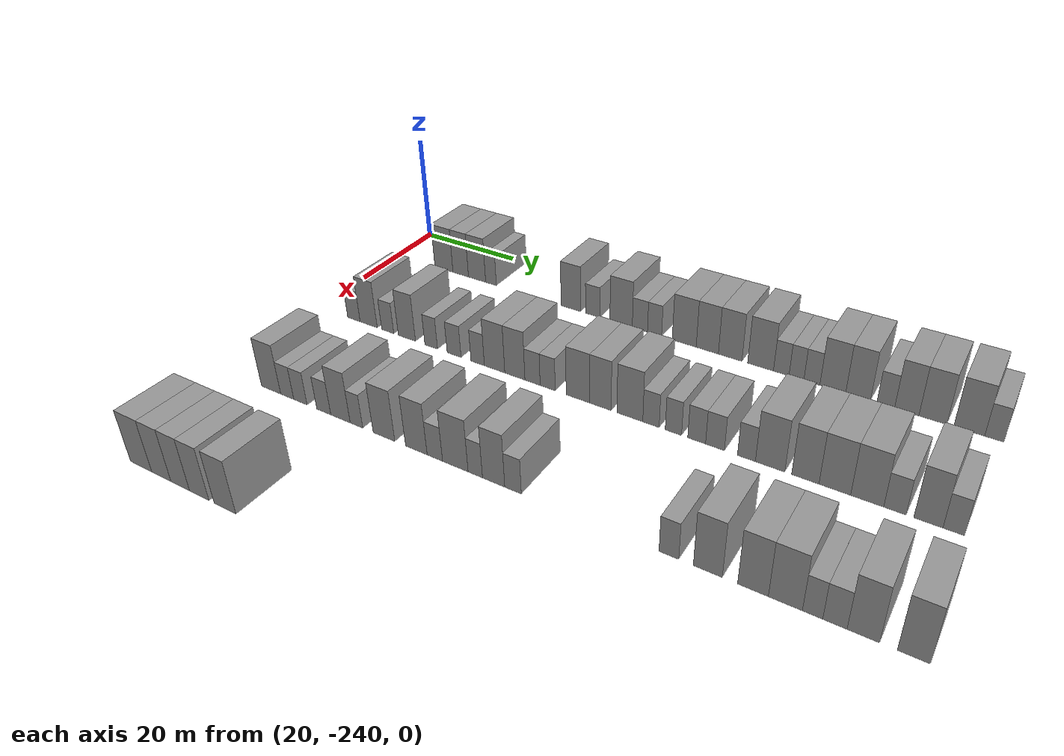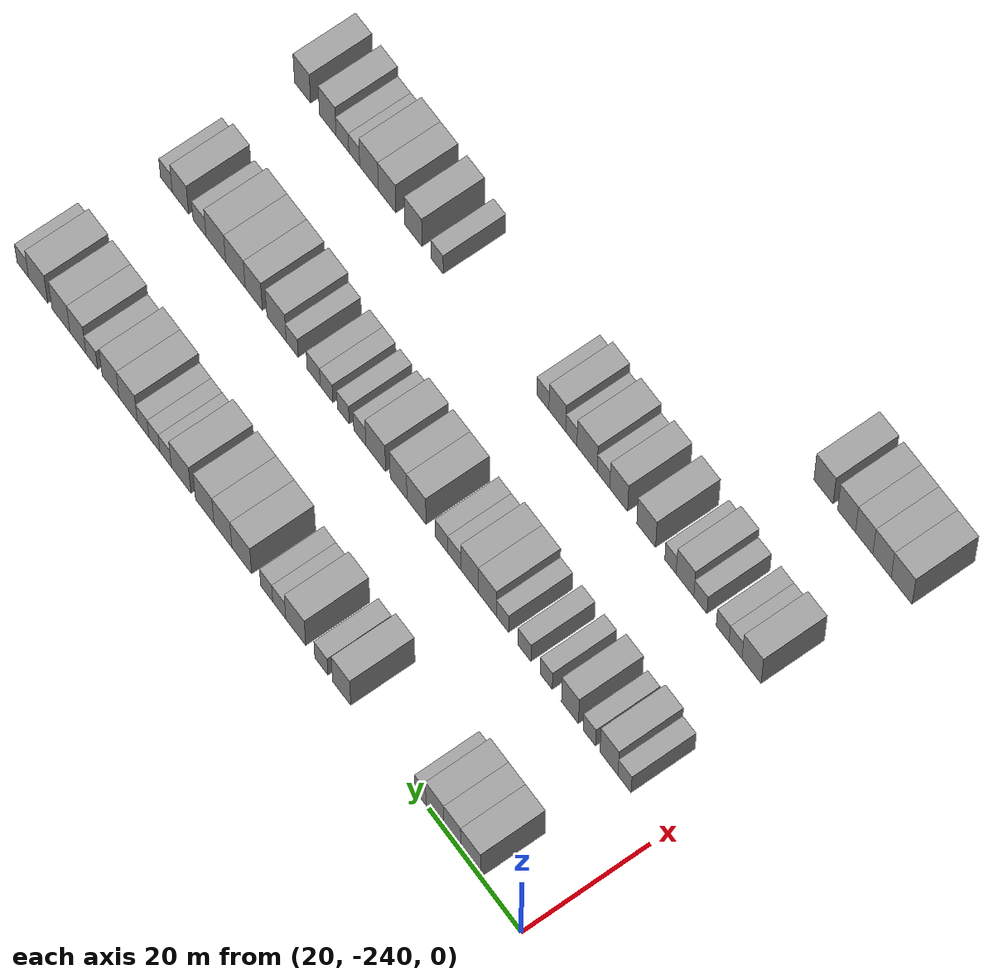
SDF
<sdf version="1.6">
 <world name="default">
  <model name="building_40">
   <static>1</static>
   <pose>25.0000 -228.9742 0 0.000000 0.000000 0.000000</pose>
   <link name="link">
    <pose>0 0 4.50 0 0 0</pose>
    <collision name="collision"><geometry><box><size>10.0000 4.2672 9.0000</size></box></geometry></collision>
    <visual name="visual">
     <cast_shadows>0</cast_shadows>
     <geometry><box><size>10.0000 4.2672 9.0000</size></box></geometry>
     <material>
      <script>
       <uri>model://grey_wall/materials/scripts</uri>
       <uri>model://grey_wall/materials/textures</uri>
       <name>vrc/grey_wall</name>
      </script>
     </material>
    </visual>
   </link>
  </model>
  <model name="building_41">
   <static>1</static>
   <pose>25.0000 -225.0343 0 0.000000 0.000000 0.000000</pose>
   <link name="link">
    <pose>0 0 4.50 0 0 0</pose>
    <collision name="collision"><geometry><box><size>10.0000 3.6128 9.0000</size></box></geometry></collision>
    <visual name="visual">
     <cast_shadows>0</cast_shadows>
     <geometry><box><size>10.0000 3.6128 9.0000</size></box></geometry>
     <material>
      <script>
       <uri>model://grey_wall/materials/scripts</uri>
       <uri>model://grey_wall/materials/textures</uri>
       <name>vrc/grey_wall</name>
      </script>
     </material>
    </visual>
   </link>
  </model>
  <model name="building_42">
   <static>1</static>
   <pose>25.0000 -221.2701 0 0.000000 0.000000 0.000000</pose>
   <link name="link">
    <pose>0 0 4.50 0 0 0</pose>
    <collision name="collision"><geometry><box><size>10.0000 3.9156 9.0000</size></box></geometry></collision>
    <visual name="visual">
     <cast_shadows>0</cast_shadows>
     <geometry><box><size>10.0000 3.9156 9.0000</size></box></geometry>
     <material>
      <script>
       <uri>model://grey_wall/materials/scripts</uri>
       <uri>model://grey_wall/materials/textures</uri>
       <name>vrc/grey_wall</name>
      </script>
     </material>
    </visual>
   </link>
  </model>
  <model name="building_43">
   <static>1</static>
   <pose>25.0000 -218.1112 0 0.000000 0.000000 0.000000</pose>
   <link name="link">
    <pose>0 0 3.00 0 0 0</pose>
    <collision name="collision"><geometry><box><size>10.0000 2.4021 6.0000</size></box></geometry></collision>
    <visual name="visual">
     <cast_shadows>0</cast_shadows>
     <geometry><box><size>10.0000 2.4021 6.0000</size></box></geometry>
     <material>
      <script>
       <uri>model://grey_wall/materials/scripts</uri>
       <uri>model://grey_wall/materials/textures</uri>
       <name>vrc/grey_wall</name>
      </script>
     </material>
    </visual>
   </link>
  </model>
  <model name="building_44">
   <static>1</static>
   <pose>25.0000 -200.8875 0 0.000000 0.000000 0.000000</pose>
   <link name="link">
    <pose>0 0 4.50 0 0 0</pose>
    <collision name="collision"><geometry><box><size>10.0000 4.0151 9.0000</size></box></geometry></collision>
    <visual name="visual">
     <cast_shadows>0</cast_shadows>
     <geometry><box><size>10.0000 4.0151 9.0000</size></box></geometry>
     <material>
      <script>
       <uri>model://grey_wall/materials/scripts</uri>
       <uri>model://grey_wall/materials/textures</uri>
       <name>vrc/grey_wall</name>
      </script>
     </material>
    </visual>
   </link>
  </model>
  <model name="building_45">
   <static>1</static>
   <pose>25.0000 -196.4308 0 0.000000 0.000000 0.000000</pose>
   <link name="link">
    <pose>0 0 3.00 0 0 0</pose>
    <collision name="collision"><geometry><box><size>10.0000 2.8984 6.0000</size></box></geometry></collision>
    <visual name="visual">
     <cast_shadows>0</cast_shadows>
     <geometry><box><size>10.0000 2.8984 6.0000</size></box></geometry>
     <material>
      <script>
       <uri>model://grey_wall/materials/scripts</uri>
       <uri>model://grey_wall/materials/textures</uri>
       <name>vrc/grey_wall</name>
      </script>
     </material>
    </visual>
   </link>
  </model>
  <model name="building_46">
   <static>1</static>
   <pose>25.0000 -190.7838 0 0.000000 0.000000 0.000000</pose>
   <link name="link">
    <pose>0 0 4.50 0 0 0</pose>
    <collision name="collision"><geometry><box><size>10.0000 4.3955 9.0000</size></box></geometry></collision>
    <visual name="visual">
     <cast_shadows>0</cast_shadows>
     <geometry><box><size>10.0000 4.3955 9.0000</size></box></geometry>
     <material>
      <script>
       <uri>model://grey_wall/materials/scripts</uri>
       <uri>model://grey_wall/materials/textures</uri>
       <name>vrc/grey_wall</name>
      </script>
     </material>
    </visual>
   </link>
  </model>
  <model name="building_47">
   <static>1</static>
   <pose>25.0000 -187.1264 0 0.000000 0.000000 0.000000</pose>
   <link name="link">
    <pose>0 0 3.00 0 0 0</pose>
    <collision name="collision"><geometry><box><size>10.0000 2.9193 6.0000</size></box></geometry></collision>
    <visual name="visual">
     <cast_shadows>0</cast_shadows>
     <geometry><box><size>10.0000 2.9193 6.0000</size></box></geometry>
     <material>
      <script>
       <uri>model://grey_wall/materials/scripts</uri>
       <uri>model://grey_wall/materials/textures</uri>
       <name>vrc/grey_wall</name>
      </script>
     </material>
    </visual>
   </link>
  </model>
  <model name="building_48">
   <static>1</static>
   <pose>25.0000 -184.3268 0 0.000000 0.000000 0.000000</pose>
   <link name="link">
    <pose>0 0 3.00 0 0 0</pose>
    <collision name="collision"><geometry><box><size>10.0000 2.6798 6.0000</size></box></geometry></collision>
    <visual name="visual">
     <cast_shadows>0</cast_shadows>
     <geometry><box><size>10.0000 2.6798 6.0000</size></box></geometry>
     <material>
      <script>
       <uri>model://grey_wall/materials/scripts</uri>
       <uri>model://grey_wall/materials/textures</uri>
       <name>vrc/grey_wall</name>
      </script>
     </material>
    </visual>
   </link>
  </model>
  <model name="building_49">
   <static>1</static>
   <pose>25.0000 -178.7827 0 0.000000 0.000000 0.000000</pose>
   <link name="link">
    <pose>0 0 4.50 0 0 0</pose>
    <collision name="collision"><geometry><box><size>10.0000 4.4084 9.0000</size></box></geometry></collision>
    <visual name="visual">
     <cast_shadows>0</cast_shadows>
     <geometry><box><size>10.0000 4.4084 9.0000</size></box></geometry>
     <material>
      <script>
       <uri>model://grey_wall/materials/scripts</uri>
       <uri>model://grey_wall/materials/textures</uri>
       <name>vrc/grey_wall</name>
      </script>
     </material>
    </visual>
   </link>
  </model>
  <model name="building_50">
   <static>1</static>
   <pose>25.0000 -174.5790 0 0.000000 0.000000 0.000000</pose>
   <link name="link">
    <pose>0 0 4.50 0 0 0</pose>
    <collision name="collision"><geometry><box><size>10.0000 3.9990 9.0000</size></box></geometry></collision>
    <visual name="visual">
     <cast_shadows>0</cast_shadows>
     <geometry><box><size>10.0000 3.9990 9.0000</size></box></geometry>
     <material>
      <script>
       <uri>model://grey_wall/materials/scripts</uri>
       <uri>model://grey_wall/materials/textures</uri>
       <name>vrc/grey_wall</name>
      </script>
     </material>
    </visual>
   </link>
  </model>
  <model name="building_51">
   <static>1</static>
   <pose>25.0000 -170.5038 0 0.000000 0.000000 0.000000</pose>
   <link name="link">
    <pose>0 0 4.50 0 0 0</pose>
    <collision name="collision"><geometry><box><size>10.0000 4.1513 9.0000</size></box></geometry></collision>
    <visual name="visual">
     <cast_shadows>0</cast_shadows>
     <geometry><box><size>10.0000 4.1513 9.0000</size></box></geometry>
     <material>
      <script>
       <uri>model://grey_wall/materials/scripts</uri>
       <uri>model://grey_wall/materials/textures</uri>
       <name>vrc/grey_wall</name>
      </script>
     </material>
    </visual>
   </link>
  </model>
  <model name="building_52">
   <static>1</static>
   <pose>25.0000 -165.2198 0 0.000000 0.000000 0.000000</pose>
   <link name="link">
    <pose>0 0 4.50 0 0 0</pose>
    <collision name="collision"><geometry><box><size>10.0000 4.4166 9.0000</size></box></geometry></collision>
    <visual name="visual">
     <cast_shadows>0</cast_shadows>
     <geometry><box><size>10.0000 4.4166 9.0000</size></box></geometry>
     <material>
      <script>
       <uri>model://grey_wall/materials/scripts</uri>
       <uri>model://grey_wall/materials/textures</uri>
       <name>vrc/grey_wall</name>
      </script>
     </material>
    </visual>
   </link>
  </model>
  <model name="building_53">
   <static>1</static>
   <pose>25.0000 -161.7086 0 0.000000 0.000000 0.000000</pose>
   <link name="link">
    <pose>0 0 3.00 0 0 0</pose>
    <collision name="collision"><geometry><box><size>10.0000 2.6059 6.0000</size></box></geometry></collision>
    <visual name="visual">
     <cast_shadows>0</cast_shadows>
     <geometry><box><size>10.0000 2.6059 6.0000</size></box></geometry>
     <material>
      <script>
       <uri>model://grey_wall/materials/scripts</uri>
       <uri>model://grey_wall/materials/textures</uri>
       <name>vrc/grey_wall</name>
      </script>
     </material>
    </visual>
   </link>
  </model>
  <model name="building_54">
   <static>1</static>
   <pose>25.0000 -159.1766 0 0.000000 0.000000 0.000000</pose>
   <link name="link">
    <pose>0 0 3.00 0 0 0</pose>
    <collision name="collision"><geometry><box><size>10.0000 2.4581 6.0000</size></box></geometry></collision>
    <visual name="visual">
     <cast_shadows>0</cast_shadows>
     <geometry><box><size>10.0000 2.4581 6.0000</size></box></geometry>
     <material>
      <script>
       <uri>model://grey_wall/materials/scripts</uri>
       <uri>model://grey_wall/materials/textures</uri>
       <name>vrc/grey_wall</name>
      </script>
     </material>
    </visual>
   </link>
  </model>
  <model name="building_55">
   <static>1</static>
   <pose>25.0000 -156.6405 0 0.000000 0.000000 0.000000</pose>
   <link name="link">
    <pose>0 0 3.00 0 0 0</pose>
    <collision name="collision"><geometry><box><size>10.0000 2.6142 6.0000</size></box></geometry></collision>
    <visual name="visual">
     <cast_shadows>0</cast_shadows>
     <geometry><box><size>10.0000 2.6142 6.0000</size></box></geometry>
     <material>
      <script>
       <uri>model://grey_wall/materials/scripts</uri>
       <uri>model://grey_wall/materials/textures</uri>
       <name>vrc/grey_wall</name>
      </script>
     </material>
    </visual>
   </link>
  </model>
  <model name="building_56">
   <static>1</static>
   <pose>25.0000 -153.2643 0 0.000000 0.000000 0.000000</pose>
   <link name="link">
    <pose>0 0 4.50 0 0 0</pose>
    <collision name="collision"><geometry><box><size>10.0000 4.1381 9.0000</size></box></geometry></collision>
    <visual name="visual">
     <cast_shadows>0</cast_shadows>
     <geometry><box><size>10.0000 4.1381 9.0000</size></box></geometry>
     <material>
      <script>
       <uri>model://grey_wall/materials/scripts</uri>
       <uri>model://grey_wall/materials/textures</uri>
       <name>vrc/grey_wall</name>
      </script>
     </material>
    </visual>
   </link>
  </model>
  <model name="building_57">
   <static>1</static>
   <pose>25.0000 -149.2630 0 0.000000 0.000000 0.000000</pose>
   <link name="link">
    <pose>0 0 4.50 0 0 0</pose>
    <collision name="collision"><geometry><box><size>10.0000 3.8646 9.0000</size></box></geometry></collision>
    <visual name="visual">
     <cast_shadows>0</cast_shadows>
     <geometry><box><size>10.0000 3.8646 9.0000</size></box></geometry>
     <material>
      <script>
       <uri>model://grey_wall/materials/scripts</uri>
       <uri>model://grey_wall/materials/textures</uri>
       <name>vrc/grey_wall</name>
      </script>
     </material>
    </visual>
   </link>
  </model>
  <model name="building_58">
   <static>1</static>
   <pose>25.0000 -144.9823 0 0.000000 0.000000 0.000000</pose>
   <link name="link">
    <pose>0 0 3.00 0 0 0</pose>
    <collision name="collision"><geometry><box><size>10.0000 2.6967 6.0000</size></box></geometry></collision>
    <visual name="visual">
     <cast_shadows>0</cast_shadows>
     <geometry><box><size>10.0000 2.6967 6.0000</size></box></geometry>
     <material>
      <script>
       <uri>model://grey_wall/materials/scripts</uri>
       <uri>model://grey_wall/materials/textures</uri>
       <name>vrc/grey_wall</name>
      </script>
     </material>
    </visual>
   </link>
  </model>
  <model name="building_59">
   <static>1</static>
   <pose>25.0000 -141.8142 0 0.000000 0.000000 0.000000</pose>
   <link name="link">
    <pose>0 0 4.50 0 0 0</pose>
    <collision name="collision"><geometry><box><size>10.0000 3.6396 9.0000</size></box></geometry></collision>
    <visual name="visual">
     <cast_shadows>0</cast_shadows>
     <geometry><box><size>10.0000 3.6396 9.0000</size></box></geometry>
     <material>
      <script>
       <uri>model://grey_wall/materials/scripts</uri>
       <uri>model://grey_wall/materials/textures</uri>
       <name>vrc/grey_wall</name>
      </script>
     </material>
    </visual>
   </link>
  </model>
  <model name="building_60">
   <static>1</static>
   <pose>25.0000 -137.9425 0 0.000000 0.000000 0.000000</pose>
   <link name="link">
    <pose>0 0 4.50 0 0 0</pose>
    <collision name="collision"><geometry><box><size>10.0000 4.1037 9.0000</size></box></geometry></collision>
    <visual name="visual">
     <cast_shadows>0</cast_shadows>
     <geometry><box><size>10.0000 4.1037 9.0000</size></box></geometry>
     <material>
      <script>
       <uri>model://grey_wall/materials/scripts</uri>
       <uri>model://grey_wall/materials/textures</uri>
       <name>vrc/grey_wall</name>
      </script>
     </material>
    </visual>
   </link>
  </model>
  <model name="building_61">
   <static>1</static>
   <pose>25.0000 -132.6984 0 0.000000 0.000000 0.000000</pose>
   <link name="link">
    <pose>0 0 4.50 0 0 0</pose>
    <collision name="collision"><geometry><box><size>10.0000 4.3846 9.0000</size></box></geometry></collision>
    <visual name="visual">
     <cast_shadows>0</cast_shadows>
     <geometry><box><size>10.0000 4.3846 9.0000</size></box></geometry>
     <material>
      <script>
       <uri>model://grey_wall/materials/scripts</uri>
       <uri>model://grey_wall/materials/textures</uri>
       <name>vrc/grey_wall</name>
      </script>
     </material>
    </visual>
   </link>
  </model>
  <model name="building_62">
   <static>1</static>
   <pose>25.0000 -129.1732 0 0.000000 0.000000 0.000000</pose>
   <link name="link">
    <pose>0 0 3.00 0 0 0</pose>
    <collision name="collision"><geometry><box><size>10.0000 2.6657 6.0000</size></box></geometry></collision>
    <visual name="visual">
     <cast_shadows>0</cast_shadows>
     <geometry><box><size>10.0000 2.6657 6.0000</size></box></geometry>
     <material>
      <script>
       <uri>model://grey_wall/materials/scripts</uri>
       <uri>model://grey_wall/materials/textures</uri>
       <name>vrc/grey_wall</name>
      </script>
     </material>
    </visual>
   </link>
  </model>
  <model name="building_229">
   <static>1</static>
   <pose>47.0000 -231.6376 0 0.000000 0.000000 0.000000</pose>
   <link name="link">
    <pose>0 0 3.00 0 0 0</pose>
    <collision name="collision"><geometry><box><size>10.0000 2.8334 6.0000</size></box></geometry></collision>
    <visual name="visual">
     <cast_shadows>0</cast_shadows>
     <geometry><box><size>10.0000 2.8334 6.0000</size></box></geometry>
     <material>
      <script>
       <uri>model://grey_wall/materials/scripts</uri>
       <uri>model://grey_wall/materials/textures</uri>
       <name>vrc/grey_wall</name>
      </script>
     </material>
    </visual>
   </link>
  </model>
  <model name="building_230">
   <static>1</static>
   <pose>47.0000 -228.2980 0 0.000000 0.000000 0.000000</pose>
   <link name="link">
    <pose>0 0 4.50 0 0 0</pose>
    <collision name="collision"><geometry><box><size>10.0000 3.8458 9.0000</size></box></geometry></collision>
    <visual name="visual">
     <cast_shadows>0</cast_shadows>
     <geometry><box><size>10.0000 3.8458 9.0000</size></box></geometry>
     <material>
      <script>
       <uri>model://grey_wall/materials/scripts</uri>
       <uri>model://grey_wall/materials/textures</uri>
       <name>vrc/grey_wall</name>
      </script>
     </material>
    </visual>
   </link>
  </model>
  <model name="building_231">
   <static>1</static>
   <pose>47.0000 -224.0482 0 0.000000 0.000000 0.000000</pose>
   <link name="link">
    <pose>0 0 3.00 0 0 0</pose>
    <collision name="collision"><geometry><box><size>10.0000 2.6537 6.0000</size></box></geometry></collision>
    <visual name="visual">
     <cast_shadows>0</cast_shadows>
     <geometry><box><size>10.0000 2.6537 6.0000</size></box></geometry>
     <material>
      <script>
       <uri>model://grey_wall/materials/scripts</uri>
       <uri>model://grey_wall/materials/textures</uri>
       <name>vrc/grey_wall</name>
      </script>
     </material>
    </visual>
   </link>
  </model>
  <model name="building_232">
   <static>1</static>
   <pose>47.0000 -219.8827 0 0.000000 0.000000 0.000000</pose>
   <link name="link">
    <pose>0 0 4.50 0 0 0</pose>
    <collision name="collision"><geometry><box><size>10.0000 3.6773 9.0000</size></box></geometry></collision>
    <visual name="visual">
     <cast_shadows>0</cast_shadows>
     <geometry><box><size>10.0000 3.6773 9.0000</size></box></geometry>
     <material>
      <script>
       <uri>model://grey_wall/materials/scripts</uri>
       <uri>model://grey_wall/materials/textures</uri>
       <name>vrc/grey_wall</name>
      </script>
     </material>
    </visual>
   </link>
  </model>
  <model name="building_233">
   <static>1</static>
   <pose>47.0000 -214.7263 0 0.000000 0.000000 0.000000</pose>
   <link name="link">
    <pose>0 0 3.00 0 0 0</pose>
    <collision name="collision"><geometry><box><size>10.0000 2.6353 6.0000</size></box></geometry></collision>
    <visual name="visual">
     <cast_shadows>0</cast_shadows>
     <geometry><box><size>10.0000 2.6353 6.0000</size></box></geometry>
     <material>
      <script>
       <uri>model://grey_wall/materials/scripts</uri>
       <uri>model://grey_wall/materials/textures</uri>
       <name>vrc/grey_wall</name>
      </script>
     </material>
    </visual>
   </link>
  </model>
  <model name="building_234">
   <static>1</static>
   <pose>47.0000 -209.9913 0 0.000000 0.000000 0.000000</pose>
   <link name="link">
    <pose>0 0 3.00 0 0 0</pose>
    <collision name="collision"><geometry><box><size>10.0000 2.8346 6.0000</size></box></geometry></collision>
    <visual name="visual">
     <cast_shadows>0</cast_shadows>
     <geometry><box><size>10.0000 2.8346 6.0000</size></box></geometry>
     <material>
      <script>
       <uri>model://grey_wall/materials/scripts</uri>
       <uri>model://grey_wall/materials/textures</uri>
       <name>vrc/grey_wall</name>
      </script>
     </material>
    </visual>
   </link>
  </model>
  <model name="building_235">
   <static>1</static>
   <pose>47.0000 -205.2465 0 0.000000 0.000000 0.000000</pose>
   <link name="link">
    <pose>0 0 3.00 0 0 0</pose>
    <collision name="collision"><geometry><box><size>10.0000 2.6551 6.0000</size></box></geometry></collision>
    <visual name="visual">
     <cast_shadows>0</cast_shadows>
     <geometry><box><size>10.0000 2.6551 6.0000</size></box></geometry>
     <material>
      <script>
       <uri>model://grey_wall/materials/scripts</uri>
       <uri>model://grey_wall/materials/textures</uri>
       <name>vrc/grey_wall</name>
      </script>
     </material>
    </visual>
   </link>
  </model>
  <model name="building_236">
   <static>1</static>
   <pose>47.0000 -201.9274 0 0.000000 0.000000 0.000000</pose>
   <link name="link">
    <pose>0 0 4.50 0 0 0</pose>
    <collision name="collision"><geometry><box><size>10.0000 3.9831 9.0000</size></box></geometry></collision>
    <visual name="visual">
     <cast_shadows>0</cast_shadows>
     <geometry><box><size>10.0000 3.9831 9.0000</size></box></geometry>
     <material>
      <script>
       <uri>model://grey_wall/materials/scripts</uri>
       <uri>model://grey_wall/materials/textures</uri>
       <name>vrc/grey_wall</name>
      </script>
     </material>
    </visual>
   </link>
  </model>
  <model name="building_237">
   <static>1</static>
   <pose>47.0000 -198.0136 0 0.000000 0.000000 0.000000</pose>
   <link name="link">
    <pose>0 0 4.50 0 0 0</pose>
    <collision name="collision"><geometry><box><size>10.0000 3.8446 9.0000</size></box></geometry></collision>
    <visual name="visual">
     <cast_shadows>0</cast_shadows>
     <geometry><box><size>10.0000 3.8446 9.0000</size></box></geometry>
     <material>
      <script>
       <uri>model://grey_wall/materials/scripts</uri>
       <uri>model://grey_wall/materials/textures</uri>
       <name>vrc/grey_wall</name>
      </script>
     </material>
    </visual>
   </link>
  </model>
  <model name="building_238">
   <static>1</static>
   <pose>47.0000 -194.6655 0 0.000000 0.000000 0.000000</pose>
   <link name="link">
    <pose>0 0 3.00 0 0 0</pose>
    <collision name="collision"><geometry><box><size>10.0000 2.8516 6.0000</size></box></geometry></collision>
    <visual name="visual">
     <cast_shadows>0</cast_shadows>
     <geometry><box><size>10.0000 2.8516 6.0000</size></box></geometry>
     <material>
      <script>
       <uri>model://grey_wall/materials/scripts</uri>
       <uri>model://grey_wall/materials/textures</uri>
       <name>vrc/grey_wall</name>
      </script>
     </material>
    </visual>
   </link>
  </model>
  <model name="building_239">
   <static>1</static>
   <pose>47.0000 -191.8504 0 0.000000 0.000000 0.000000</pose>
   <link name="link">
    <pose>0 0 3.00 0 0 0</pose>
    <collision name="collision"><geometry><box><size>10.0000 2.7787 6.0000</size></box></geometry></collision>
    <visual name="visual">
     <cast_shadows>0</cast_shadows>
     <geometry><box><size>10.0000 2.7787 6.0000</size></box></geometry>
     <material>
      <script>
       <uri>model://grey_wall/materials/scripts</uri>
       <uri>model://grey_wall/materials/textures</uri>
       <name>vrc/grey_wall</name>
      </script>
     </material>
    </visual>
   </link>
  </model>
  <model name="building_240">
   <static>1</static>
   <pose>47.0000 -186.3586 0 0.000000 0.000000 0.000000</pose>
   <link name="link">
    <pose>0 0 4.50 0 0 0</pose>
    <collision name="collision"><geometry><box><size>10.0000 4.2049 9.0000</size></box></geometry></collision>
    <visual name="visual">
     <cast_shadows>0</cast_shadows>
     <geometry><box><size>10.0000 4.2049 9.0000</size></box></geometry>
     <material>
      <script>
       <uri>model://grey_wall/materials/scripts</uri>
       <uri>model://grey_wall/materials/textures</uri>
       <name>vrc/grey_wall</name>
      </script>
     </material>
    </visual>
   </link>
  </model>
  <model name="building_241">
   <static>1</static>
   <pose>47.0000 -182.3909 0 0.000000 0.000000 0.000000</pose>
   <link name="link">
    <pose>0 0 4.50 0 0 0</pose>
    <collision name="collision"><geometry><box><size>10.0000 3.7305 9.0000</size></box></geometry></collision>
    <visual name="visual">
     <cast_shadows>0</cast_shadows>
     <geometry><box><size>10.0000 3.7305 9.0000</size></box></geometry>
     <material>
      <script>
       <uri>model://grey_wall/materials/scripts</uri>
       <uri>model://grey_wall/materials/textures</uri>
       <name>vrc/grey_wall</name>
      </script>
     </material>
    </visual>
   </link>
  </model>
  <model name="building_242">
   <static>1</static>
   <pose>47.0000 -177.3343 0 0.000000 0.000000 0.000000</pose>
   <link name="link">
    <pose>0 0 4.50 0 0 0</pose>
    <collision name="collision"><geometry><box><size>10.0000 4.3827 9.0000</size></box></geometry></collision>
    <visual name="visual">
     <cast_shadows>0</cast_shadows>
     <geometry><box><size>10.0000 4.3827 9.0000</size></box></geometry>
     <material>
      <script>
       <uri>model://grey_wall/materials/scripts</uri>
       <uri>model://grey_wall/materials/textures</uri>
       <name>vrc/grey_wall</name>
      </script>
     </material>
    </visual>
   </link>
  </model>
  <model name="building_243">
   <static>1</static>
   <pose>47.0000 -173.7871 0 0.000000 0.000000 0.000000</pose>
   <link name="link">
    <pose>0 0 3.00 0 0 0</pose>
    <collision name="collision"><geometry><box><size>10.0000 2.7116 6.0000</size></box></geometry></collision>
    <visual name="visual">
     <cast_shadows>0</cast_shadows>
     <geometry><box><size>10.0000 2.7116 6.0000</size></box></geometry>
     <material>
      <script>
       <uri>model://grey_wall/materials/scripts</uri>
       <uri>model://grey_wall/materials/textures</uri>
       <name>vrc/grey_wall</name>
      </script>
     </material>
    </visual>
   </link>
  </model>
  <model name="building_244">
   <static>1</static>
   <pose>47.0000 -170.1099 0 0.000000 0.000000 0.000000</pose>
   <link name="link">
    <pose>0 0 3.00 0 0 0</pose>
    <collision name="collision"><geometry><box><size>10.0000 2.6427 6.0000</size></box></geometry></collision>
    <visual name="visual">
     <cast_shadows>0</cast_shadows>
     <geometry><box><size>10.0000 2.6427 6.0000</size></box></geometry>
     <material>
      <script>
       <uri>model://grey_wall/materials/scripts</uri>
       <uri>model://grey_wall/materials/textures</uri>
       <name>vrc/grey_wall</name>
      </script>
     </material>
    </visual>
   </link>
  </model>
  <model name="building_245">
   <static>1</static>
   <pose>47.0000 -166.3771 0 0.000000 0.000000 0.000000</pose>
   <link name="link">
    <pose>0 0 3.00 0 0 0</pose>
    <collision name="collision"><geometry><box><size>10.0000 2.8229 6.0000</size></box></geometry></collision>
    <visual name="visual">
     <cast_shadows>0</cast_shadows>
     <geometry><box><size>10.0000 2.8229 6.0000</size></box></geometry>
     <material>
      <script>
       <uri>model://grey_wall/materials/scripts</uri>
       <uri>model://grey_wall/materials/textures</uri>
       <name>vrc/grey_wall</name>
      </script>
     </material>
    </visual>
   </link>
  </model>
  <model name="building_246">
   <static>1</static>
   <pose>47.0000 -163.4967 0 0.000000 0.000000 0.000000</pose>
   <link name="link">
    <pose>0 0 3.00 0 0 0</pose>
    <collision name="collision"><geometry><box><size>10.0000 2.9380 6.0000</size></box></geometry></collision>
    <visual name="visual">
     <cast_shadows>0</cast_shadows>
     <geometry><box><size>10.0000 2.9380 6.0000</size></box></geometry>
     <material>
      <script>
       <uri>model://grey_wall/materials/scripts</uri>
       <uri>model://grey_wall/materials/textures</uri>
       <name>vrc/grey_wall</name>
      </script>
     </material>
    </visual>
   </link>
  </model>
  <model name="building_247">
   <static>1</static>
   <pose>47.0000 -158.6736 0 0.000000 0.000000 0.000000</pose>
   <link name="link">
    <pose>0 0 3.00 0 0 0</pose>
    <collision name="collision"><geometry><box><size>10.0000 2.7082 6.0000</size></box></geometry></collision>
    <visual name="visual">
     <cast_shadows>0</cast_shadows>
     <geometry><box><size>10.0000 2.7082 6.0000</size></box></geometry>
     <material>
      <script>
       <uri>model://grey_wall/materials/scripts</uri>
       <uri>model://grey_wall/materials/textures</uri>
       <name>vrc/grey_wall</name>
      </script>
     </material>
    </visual>
   </link>
  </model>
  <model name="building_248">
   <static>1</static>
   <pose>47.0000 -155.1468 0 0.000000 0.000000 0.000000</pose>
   <link name="link">
    <pose>0 0 4.50 0 0 0</pose>
    <collision name="collision"><geometry><box><size>10.0000 4.3454 9.0000</size></box></geometry></collision>
    <visual name="visual">
     <cast_shadows>0</cast_shadows>
     <geometry><box><size>10.0000 4.3454 9.0000</size></box></geometry>
     <material>
      <script>
       <uri>model://grey_wall/materials/scripts</uri>
       <uri>model://grey_wall/materials/textures</uri>
       <name>vrc/grey_wall</name>
      </script>
     </material>
    </visual>
   </link>
  </model>
  <model name="building_249">
   <static>1</static>
   <pose>47.0000 -150.0235 0 0.000000 0.000000 0.000000</pose>
   <link name="link">
    <pose>0 0 4.50 0 0 0</pose>
    <collision name="collision"><geometry><box><size>10.0000 3.9013 9.0000</size></box></geometry></collision>
    <visual name="visual">
     <cast_shadows>0</cast_shadows>
     <geometry><box><size>10.0000 3.9013 9.0000</size></box></geometry>
     <material>
      <script>
       <uri>model://grey_wall/materials/scripts</uri>
       <uri>model://grey_wall/materials/textures</uri>
       <name>vrc/grey_wall</name>
      </script>
     </material>
    </visual>
   </link>
  </model>
  <model name="building_250">
   <static>1</static>
   <pose>47.0000 -145.8691 0 0.000000 0.000000 0.000000</pose>
   <link name="link">
    <pose>0 0 4.50 0 0 0</pose>
    <collision name="collision"><geometry><box><size>10.0000 4.4077 9.0000</size></box></geometry></collision>
    <visual name="visual">
     <cast_shadows>0</cast_shadows>
     <geometry><box><size>10.0000 4.4077 9.0000</size></box></geometry>
     <material>
      <script>
       <uri>model://grey_wall/materials/scripts</uri>
       <uri>model://grey_wall/materials/textures</uri>
       <name>vrc/grey_wall</name>
      </script>
     </material>
    </visual>
   </link>
  </model>
  <model name="building_251">
   <static>1</static>
   <pose>47.0000 -141.4261 0 0.000000 0.000000 0.000000</pose>
   <link name="link">
    <pose>0 0 4.50 0 0 0</pose>
    <collision name="collision"><geometry><box><size>10.0000 4.4782 9.0000</size></box></geometry></collision>
    <visual name="visual">
     <cast_shadows>0</cast_shadows>
     <geometry><box><size>10.0000 4.4782 9.0000</size></box></geometry>
     <material>
      <script>
       <uri>model://grey_wall/materials/scripts</uri>
       <uri>model://grey_wall/materials/textures</uri>
       <name>vrc/grey_wall</name>
      </script>
     </material>
    </visual>
   </link>
  </model>
  <model name="building_252">
   <static>1</static>
   <pose>47.0000 -137.7105 0 0.000000 0.000000 0.000000</pose>
   <link name="link">
    <pose>0 0 3.00 0 0 0</pose>
    <collision name="collision"><geometry><box><size>10.0000 2.9530 6.0000</size></box></geometry></collision>
    <visual name="visual">
     <cast_shadows>0</cast_shadows>
     <geometry><box><size>10.0000 2.9530 6.0000</size></box></geometry>
     <material>
      <script>
       <uri>model://grey_wall/materials/scripts</uri>
       <uri>model://grey_wall/materials/textures</uri>
       <name>vrc/grey_wall</name>
      </script>
     </material>
    </visual>
   </link>
  </model>
  <model name="building_253">
   <static>1</static>
   <pose>47.0000 -133.3679 0 0.000000 0.000000 0.000000</pose>
   <link name="link">
    <pose>0 0 4.50 0 0 0</pose>
    <collision name="collision"><geometry><box><size>10.0000 3.7323 9.0000</size></box></geometry></collision>
    <visual name="visual">
     <cast_shadows>0</cast_shadows>
     <geometry><box><size>10.0000 3.7323 9.0000</size></box></geometry>
     <material>
      <script>
       <uri>model://grey_wall/materials/scripts</uri>
       <uri>model://grey_wall/materials/textures</uri>
       <name>vrc/grey_wall</name>
      </script>
     </material>
    </visual>
   </link>
  </model>
  <model name="building_254">
   <static>1</static>
   <pose>47.0000 -130.1482 0 0.000000 0.000000 0.000000</pose>
   <link name="link">
    <pose>0 0 3.00 0 0 0</pose>
    <collision name="collision"><geometry><box><size>10.0000 2.7070 6.0000</size></box></geometry></collision>
    <visual name="visual">
     <cast_shadows>0</cast_shadows>
     <geometry><box><size>10.0000 2.7070 6.0000</size></box></geometry>
     <material>
      <script>
       <uri>model://grey_wall/materials/scripts</uri>
       <uri>model://grey_wall/materials/textures</uri>
       <name>vrc/grey_wall</name>
      </script>
     </material>
    </visual>
   </link>
  </model>
  <model name="building_413">
   <static>1</static>
   <pose>69.0000 -228.8108 0 0.000000 0.000000 0.000000</pose>
   <link name="link">
    <pose>0 0 4.50 0 0 0</pose>
    <collision name="collision"><geometry><box><size>10.0000 4.0998 9.0000</size></box></geometry></collision>
    <visual name="visual">
     <cast_shadows>0</cast_shadows>
     <geometry><box><size>10.0000 4.0998 9.0000</size></box></geometry>
     <material>
      <script>
       <uri>model://grey_wall/materials/scripts</uri>
       <uri>model://grey_wall/materials/textures</uri>
       <name>vrc/grey_wall</name>
      </script>
     </material>
    </visual>
   </link>
  </model>
  <model name="building_414">
   <static>1</static>
   <pose>69.0000 -225.3802 0 0.000000 0.000000 0.000000</pose>
   <link name="link">
    <pose>0 0 3.00 0 0 0</pose>
    <collision name="collision"><geometry><box><size>10.0000 2.7613 6.0000</size></box></geometry></collision>
    <visual name="visual">
     <cast_shadows>0</cast_shadows>
     <geometry><box><size>10.0000 2.7613 6.0000</size></box></geometry>
     <material>
      <script>
       <uri>model://grey_wall/materials/scripts</uri>
       <uri>model://grey_wall/materials/textures</uri>
       <name>vrc/grey_wall</name>
      </script>
     </material>
    </visual>
   </link>
  </model>
  <model name="building_415">
   <static>1</static>
   <pose>69.0000 -222.6150 0 0.000000 0.000000 0.000000</pose>
   <link name="link">
    <pose>0 0 3.00 0 0 0</pose>
    <collision name="collision"><geometry><box><size>10.0000 2.7691 6.0000</size></box></geometry></collision>
    <visual name="visual">
     <cast_shadows>0</cast_shadows>
     <geometry><box><size>10.0000 2.7691 6.0000</size></box></geometry>
     <material>
      <script>
       <uri>model://grey_wall/materials/scripts</uri>
       <uri>model://grey_wall/materials/textures</uri>
       <name>vrc/grey_wall</name>
      </script>
     </material>
    </visual>
   </link>
  </model>
  <model name="building_416">
   <static>1</static>
   <pose>69.0000 -217.8201 0 0.000000 0.000000 0.000000</pose>
   <link name="link">
    <pose>0 0 3.00 0 0 0</pose>
    <collision name="collision"><geometry><box><size>10.0000 2.8208 6.0000</size></box></geometry></collision>
    <visual name="visual">
     <cast_shadows>0</cast_shadows>
     <geometry><box><size>10.0000 2.8208 6.0000</size></box></geometry>
     <material>
      <script>
       <uri>model://grey_wall/materials/scripts</uri>
       <uri>model://grey_wall/materials/textures</uri>
       <name>vrc/grey_wall</name>
      </script>
     </material>
    </visual>
   </link>
  </model>
  <model name="building_417">
   <static>1</static>
   <pose>69.0000 -214.4930 0 0.000000 0.000000 0.000000</pose>
   <link name="link">
    <pose>0 0 4.50 0 0 0</pose>
    <collision name="collision"><geometry><box><size>10.0000 3.8334 9.0000</size></box></geometry></collision>
    <visual name="visual">
     <cast_shadows>0</cast_shadows>
     <geometry><box><size>10.0000 3.8334 9.0000</size></box></geometry>
     <material>
      <script>
       <uri>model://grey_wall/materials/scripts</uri>
       <uri>model://grey_wall/materials/textures</uri>
       <name>vrc/grey_wall</name>
      </script>
     </material>
    </visual>
   </link>
  </model>
  <model name="building_418">
   <static>1</static>
   <pose>69.0000 -211.3565 0 0.000000 0.000000 0.000000</pose>
   <link name="link">
    <pose>0 0 3.00 0 0 0</pose>
    <collision name="collision"><geometry><box><size>10.0000 2.4395 6.0000</size></box></geometry></collision>
    <visual name="visual">
     <cast_shadows>0</cast_shadows>
     <geometry><box><size>10.0000 2.4395 6.0000</size></box></geometry>
     <material>
      <script>
       <uri>model://grey_wall/materials/scripts</uri>
       <uri>model://grey_wall/materials/textures</uri>
       <name>vrc/grey_wall</name>
      </script>
     </material>
    </visual>
   </link>
  </model>
  <model name="building_419">
   <static>1</static>
   <pose>69.0000 -206.1035 0 0.000000 0.000000 0.000000</pose>
   <link name="link">
    <pose>0 0 4.50 0 0 0</pose>
    <collision name="collision"><geometry><box><size>10.0000 4.0666 9.0000</size></box></geometry></collision>
    <visual name="visual">
     <cast_shadows>0</cast_shadows>
     <geometry><box><size>10.0000 4.0666 9.0000</size></box></geometry>
     <material>
      <script>
       <uri>model://grey_wall/materials/scripts</uri>
       <uri>model://grey_wall/materials/textures</uri>
       <name>vrc/grey_wall</name>
      </script>
     </material>
    </visual>
   </link>
  </model>
  <model name="building_420">
   <static>1</static>
   <pose>69.0000 -200.1197 0 0.000000 0.000000 0.000000</pose>
   <link name="link">
    <pose>0 0 4.50 0 0 0</pose>
    <collision name="collision"><geometry><box><size>10.0000 3.9008 9.0000</size></box></geometry></collision>
    <visual name="visual">
     <cast_shadows>0</cast_shadows>
     <geometry><box><size>10.0000 3.9008 9.0000</size></box></geometry>
     <material>
      <script>
       <uri>model://grey_wall/materials/scripts</uri>
       <uri>model://grey_wall/materials/textures</uri>
       <name>vrc/grey_wall</name>
      </script>
     </material>
    </visual>
   </link>
  </model>
  <model name="building_421">
   <static>1</static>
   <pose>69.0000 -196.8008 0 0.000000 0.000000 0.000000</pose>
   <link name="link">
    <pose>0 0 3.00 0 0 0</pose>
    <collision name="collision"><geometry><box><size>10.0000 2.7370 6.0000</size></box></geometry></collision>
    <visual name="visual">
     <cast_shadows>0</cast_shadows>
     <geometry><box><size>10.0000 2.7370 6.0000</size></box></geometry>
     <material>
      <script>
       <uri>model://grey_wall/materials/scripts</uri>
       <uri>model://grey_wall/materials/textures</uri>
       <name>vrc/grey_wall</name>
      </script>
     </material>
    </visual>
   </link>
  </model>
  <model name="building_422">
   <static>1</static>
   <pose>69.0000 -193.2172 0 0.000000 0.000000 0.000000</pose>
   <link name="link">
    <pose>0 0 4.50 0 0 0</pose>
    <collision name="collision"><geometry><box><size>10.0000 4.4302 9.0000</size></box></geometry></collision>
    <visual name="visual">
     <cast_shadows>0</cast_shadows>
     <geometry><box><size>10.0000 4.4302 9.0000</size></box></geometry>
     <material>
      <script>
       <uri>model://grey_wall/materials/scripts</uri>
       <uri>model://grey_wall/materials/textures</uri>
       <name>vrc/grey_wall</name>
      </script>
     </material>
    </visual>
   </link>
  </model>
  <model name="building_423">
   <static>1</static>
   <pose>69.0000 -189.7822 0 0.000000 0.000000 0.000000</pose>
   <link name="link">
    <pose>0 0 3.00 0 0 0</pose>
    <collision name="collision"><geometry><box><size>10.0000 2.4398 6.0000</size></box></geometry></collision>
    <visual name="visual">
     <cast_shadows>0</cast_shadows>
     <geometry><box><size>10.0000 2.4398 6.0000</size></box></geometry>
     <material>
      <script>
       <uri>model://grey_wall/materials/scripts</uri>
       <uri>model://grey_wall/materials/textures</uri>
       <name>vrc/grey_wall</name>
      </script>
     </material>
    </visual>
   </link>
  </model>
  <model name="building_424">
   <static>1</static>
   <pose>69.0000 -186.7076 0 0.000000 0.000000 0.000000</pose>
   <link name="link">
    <pose>0 0 4.50 0 0 0</pose>
    <collision name="collision"><geometry><box><size>10.0000 3.7093 9.0000</size></box></geometry></collision>
    <visual name="visual">
     <cast_shadows>0</cast_shadows>
     <geometry><box><size>10.0000 3.7093 9.0000</size></box></geometry>
     <material>
      <script>
       <uri>model://grey_wall/materials/scripts</uri>
       <uri>model://grey_wall/materials/textures</uri>
       <name>vrc/grey_wall</name>
      </script>
     </material>
    </visual>
   </link>
  </model>
  <model name="building_425">
   <static>1</static>
   <pose>69.0000 -183.5037 0 0.000000 0.000000 0.000000</pose>
   <link name="link">
    <pose>0 0 3.00 0 0 0</pose>
    <collision name="collision"><geometry><box><size>10.0000 2.6984 6.0000</size></box></geometry></collision>
    <visual name="visual">
     <cast_shadows>0</cast_shadows>
     <geometry><box><size>10.0000 2.6984 6.0000</size></box></geometry>
     <material>
      <script>
       <uri>model://grey_wall/materials/scripts</uri>
       <uri>model://grey_wall/materials/textures</uri>
       <name>vrc/grey_wall</name>
      </script>
     </material>
    </visual>
   </link>
  </model>
  <model name="building_426">
   <static>1</static>
   <pose>69.0000 -160.0632 0 0.000000 0.000000 0.000000</pose>
   <link name="link">
    <pose>0 0 3.00 0 0 0</pose>
    <collision name="collision"><geometry><box><size>10.0000 2.7276 6.0000</size></box></geometry></collision>
    <visual name="visual">
     <cast_shadows>0</cast_shadows>
     <geometry><box><size>10.0000 2.7276 6.0000</size></box></geometry>
     <material>
      <script>
       <uri>model://grey_wall/materials/scripts</uri>
       <uri>model://grey_wall/materials/textures</uri>
       <name>vrc/grey_wall</name>
      </script>
     </material>
    </visual>
   </link>
  </model>
  <model name="building_427">
   <static>1</static>
   <pose>69.0000 -154.7624 0 0.000000 0.000000 0.000000</pose>
   <link name="link">
    <pose>0 0 4.50 0 0 0</pose>
    <collision name="collision"><geometry><box><size>10.0000 3.8740 9.0000</size></box></geometry></collision>
    <visual name="visual">
     <cast_shadows>0</cast_shadows>
     <geometry><box><size>10.0000 3.8740 9.0000</size></box></geometry>
     <material>
      <script>
       <uri>model://grey_wall/materials/scripts</uri>
       <uri>model://grey_wall/materials/textures</uri>
       <name>vrc/grey_wall</name>
      </script>
     </material>
    </visual>
   </link>
  </model>
  <model name="building_428">
   <static>1</static>
   <pose>69.0000 -148.8626 0 0.000000 0.000000 0.000000</pose>
   <link name="link">
    <pose>0 0 4.50 0 0 0</pose>
    <collision name="collision"><geometry><box><size>10.0000 3.9256 9.0000</size></box></geometry></collision>
    <visual name="visual">
     <cast_shadows>0</cast_shadows>
     <geometry><box><size>10.0000 3.9256 9.0000</size></box></geometry>
     <material>
      <script>
       <uri>model://grey_wall/materials/scripts</uri>
       <uri>model://grey_wall/materials/textures</uri>
       <name>vrc/grey_wall</name>
      </script>
     </material>
    </visual>
   </link>
  </model>
  <model name="building_429">
   <static>1</static>
   <pose>69.0000 -144.7860 0 0.000000 0.000000 0.000000</pose>
   <link name="link">
    <pose>0 0 4.50 0 0 0</pose>
    <collision name="collision"><geometry><box><size>10.0000 4.2276 9.0000</size></box></geometry></collision>
    <visual name="visual">
     <cast_shadows>0</cast_shadows>
     <geometry><box><size>10.0000 4.2276 9.0000</size></box></geometry>
     <material>
      <script>
       <uri>model://grey_wall/materials/scripts</uri>
       <uri>model://grey_wall/materials/textures</uri>
       <name>vrc/grey_wall</name>
      </script>
     </material>
    </visual>
   </link>
  </model>
  <model name="building_430">
   <static>1</static>
   <pose>69.0000 -141.4428 0 0.000000 0.000000 0.000000</pose>
   <link name="link">
    <pose>0 0 3.00 0 0 0</pose>
    <collision name="collision"><geometry><box><size>10.0000 2.4588 6.0000</size></box></geometry></collision>
    <visual name="visual">
     <cast_shadows>0</cast_shadows>
     <geometry><box><size>10.0000 2.4588 6.0000</size></box></geometry>
     <material>
      <script>
       <uri>model://grey_wall/materials/scripts</uri>
       <uri>model://grey_wall/materials/textures</uri>
       <name>vrc/grey_wall</name>
      </script>
     </material>
    </visual>
   </link>
  </model>
  <model name="building_431">
   <static>1</static>
   <pose>69.0000 -138.7727 0 0.000000 0.000000 0.000000</pose>
   <link name="link">
    <pose>0 0 3.00 0 0 0</pose>
    <collision name="collision"><geometry><box><size>10.0000 2.8813 6.0000</size></box></geometry></collision>
    <visual name="visual">
     <cast_shadows>0</cast_shadows>
     <geometry><box><size>10.0000 2.8813 6.0000</size></box></geometry>
     <material>
      <script>
       <uri>model://grey_wall/materials/scripts</uri>
       <uri>model://grey_wall/materials/textures</uri>
       <name>vrc/grey_wall</name>
      </script>
     </material>
    </visual>
   </link>
  </model>
  <model name="building_432">
   <static>1</static>
   <pose>69.0000 -135.4466 0 0.000000 0.000000 0.000000</pose>
   <link name="link">
    <pose>0 0 4.50 0 0 0</pose>
    <collision name="collision"><geometry><box><size>10.0000 3.7709 9.0000</size></box></geometry></collision>
    <visual name="visual">
     <cast_shadows>0</cast_shadows>
     <geometry><box><size>10.0000 3.7709 9.0000</size></box></geometry>
     <material>
      <script>
       <uri>model://grey_wall/materials/scripts</uri>
       <uri>model://grey_wall/materials/textures</uri>
       <name>vrc/grey_wall</name>
      </script>
     </material>
    </visual>
   </link>
  </model>
  <model name="building_433">
   <static>1</static>
   <pose>69.0000 -129.7238 0 0.000000 0.000000 0.000000</pose>
   <link name="link">
    <pose>0 0 4.50 0 0 0</pose>
    <collision name="collision"><geometry><box><size>10.0000 3.6749 9.0000</size></box></geometry></collision>
    <visual name="visual">
     <cast_shadows>0</cast_shadows>
     <geometry><box><size>10.0000 3.6749 9.0000</size></box></geometry>
     <material>
      <script>
       <uri>model://grey_wall/materials/scripts</uri>
       <uri>model://grey_wall/materials/textures</uri>
       <name>vrc/grey_wall</name>
      </script>
     </material>
    </visual>
   </link>
  </model>
  <model name="building_595">
   <static>1</static>
   <pose>91.0000 -231.2241 0 0.000000 0.000000 0.000000</pose>
   <link name="link">
    <pose>0 0 4.50 0 0 0</pose>
    <collision name="collision"><geometry><box><size>10.0000 4.4598 9.0000</size></box></geometry></collision>
    <visual name="visual">
     <cast_shadows>0</cast_shadows>
     <geometry><box><size>10.0000 4.4598 9.0000</size></box></geometry>
     <material>
      <script>
       <uri>model://grey_wall/materials/scripts</uri>
       <uri>model://grey_wall/materials/textures</uri>
       <name>vrc/grey_wall</name>
      </script>
     </material>
    </visual>
   </link>
  </model>
  <model name="building_596">
   <static>1</static>
   <pose>91.0000 -227.0301 0 0.000000 0.000000 0.000000</pose>
   <link name="link">
    <pose>0 0 4.50 0 0 0</pose>
    <collision name="collision"><geometry><box><size>10.0000 3.9282 9.0000</size></box></geometry></collision>
    <visual name="visual">
     <cast_shadows>0</cast_shadows>
     <geometry><box><size>10.0000 3.9282 9.0000</size></box></geometry>
     <material>
      <script>
       <uri>model://grey_wall/materials/scripts</uri>
       <uri>model://grey_wall/materials/textures</uri>
       <name>vrc/grey_wall</name>
      </script>
     </material>
    </visual>
   </link>
  </model>
  <model name="building_597">
   <static>1</static>
   <pose>91.0000 -223.2110 0 0.000000 0.000000 0.000000</pose>
   <link name="link">
    <pose>0 0 4.50 0 0 0</pose>
    <collision name="collision"><geometry><box><size>10.0000 3.7100 9.0000</size></box></geometry></collision>
    <visual name="visual">
     <cast_shadows>0</cast_shadows>
     <geometry><box><size>10.0000 3.7100 9.0000</size></box></geometry>
     <material>
      <script>
       <uri>model://grey_wall/materials/scripts</uri>
       <uri>model://grey_wall/materials/textures</uri>
       <name>vrc/grey_wall</name>
      </script>
     </material>
    </visual>
   </link>
  </model>
  <model name="building_598">
   <static>1</static>
   <pose>91.0000 -219.4651 0 0.000000 0.000000 0.000000</pose>
   <link name="link">
    <pose>0 0 4.50 0 0 0</pose>
    <collision name="collision"><geometry><box><size>10.0000 3.7818 9.0000</size></box></geometry></collision>
    <visual name="visual">
     <cast_shadows>0</cast_shadows>
     <geometry><box><size>10.0000 3.7818 9.0000</size></box></geometry>
     <material>
      <script>
       <uri>model://grey_wall/materials/scripts</uri>
       <uri>model://grey_wall/materials/textures</uri>
       <name>vrc/grey_wall</name>
      </script>
     </material>
    </visual>
   </link>
  </model>
  <model name="building_599">
   <static>1</static>
   <pose>91.0000 -214.5236 0 0.000000 0.000000 0.000000</pose>
   <link name="link">
    <pose>0 0 4.50 0 0 0</pose>
    <collision name="collision"><geometry><box><size>10.0000 4.1012 9.0000</size></box></geometry></collision>
    <visual name="visual">
     <cast_shadows>0</cast_shadows>
     <geometry><box><size>10.0000 4.1012 9.0000</size></box></geometry>
     <material>
      <script>
       <uri>model://grey_wall/materials/scripts</uri>
       <uri>model://grey_wall/materials/textures</uri>
       <name>vrc/grey_wall</name>
      </script>
     </material>
    </visual>
   </link>
  </model>
 </world>
</sdf>
